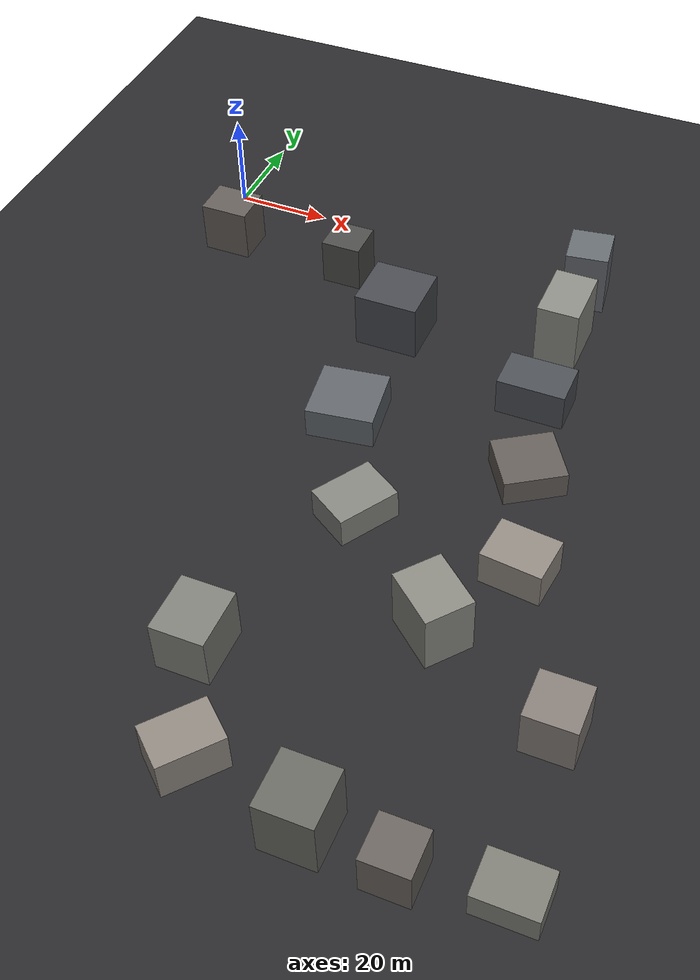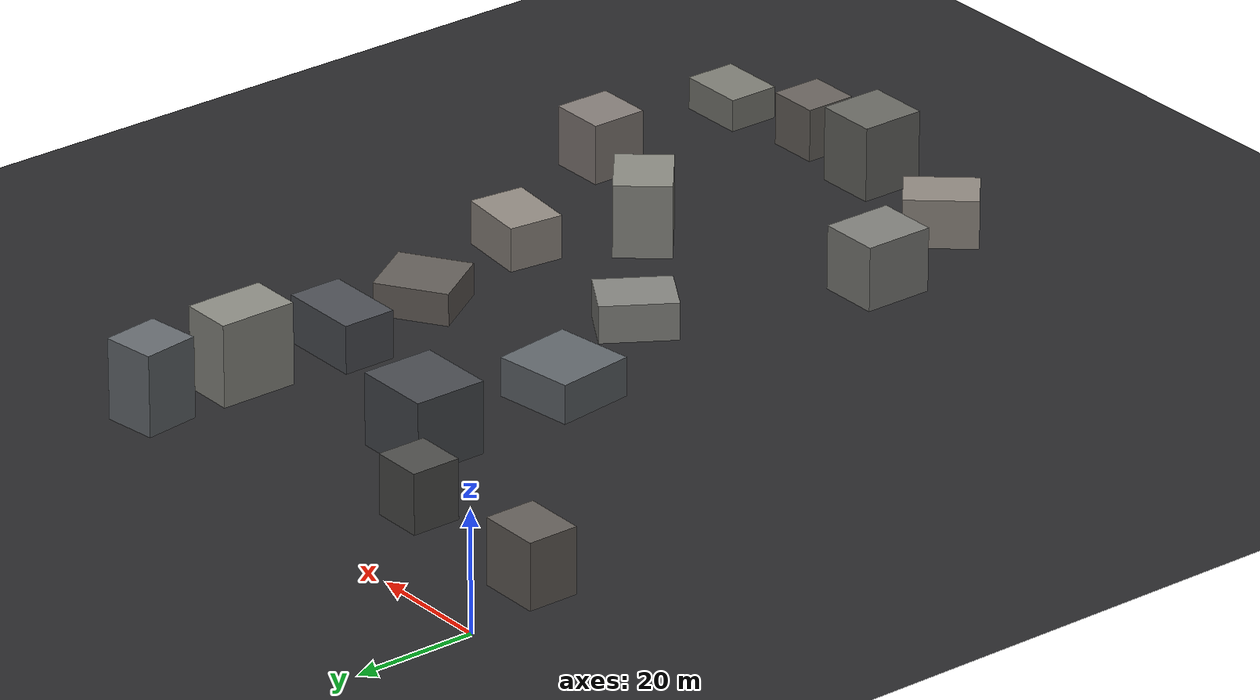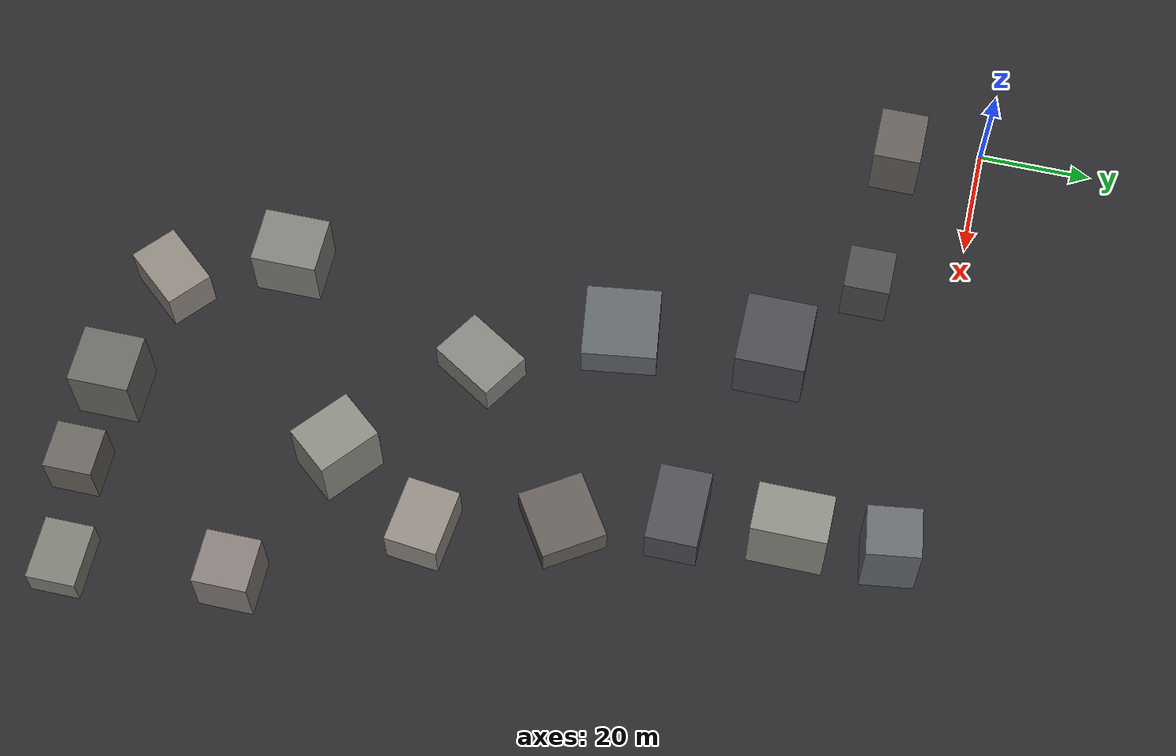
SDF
<sdf version="1.7">
 <world name="urban_tight">
  <model name="ground">
   <static>true</static>
   <pose>59.5 -62.5 0 0 0 0</pose>
   <link name="l">
    <collision name="c"><geometry><plane><normal>0 0 1</normal><size>179 185</size></plane></geometry></collision>
    <visual name="v">
     <geometry><plane><normal>0 0 1</normal><size>179 185</size></plane></geometry>
     <material><ambient>0.16 0.16 0.17 1</ambient><diffuse>0.16 0.16 0.17 1</diffuse></material>
    </visual>
   </link>
  </model>
  <model name="bldg_01">
   <static>true</static>
   <pose>62.388 -79.235 3.128 0 0 -2.1298</pose>
   <link name="l">
    <collision name="c"><geometry><box><size>12.449 9.469 6.256</size></box></geometry></collision>
    <visual name="v">
     <geometry><box><size>12.449 9.469 6.256</size></box></geometry>
     <material><ambient>0.52 0.52 0.50 1</ambient><diffuse>0.52 0.52 0.50 1</diffuse></material>
    </visual>
   </link>
  </model>
  <model name="bldg_03">
   <static>true</static>
   <pose>85.122 -98.767 6.142 0 0 -2.2655</pose>
   <link name="l">
    <collision name="c"><geometry><box><size>9.323 11.536 12.285</size></box></geometry></collision>
    <visual name="v">
     <geometry><box><size>9.323 11.536 12.285</size></box></geometry>
     <material><ambient>0.54 0.54 0.51 1</ambient><diffuse>0.54 0.54 0.51 1</diffuse></material>
    </visual>
   </link>
  </model>
  <model name="bldg_04">
   <static>true</static>
   <pose>83.743 -39.702 4.015 0 0 -1.5708</pose>
   <link name="l">
    <collision name="c"><geometry><box><size>8.933 13.743 8.029</size></box></geometry></collision>
    <visual name="v">
     <geometry><box><size>8.933 13.743 8.029</size></box></geometry>
     <material><ambient>0.30 0.31 0.33 1</ambient><diffuse>0.30 0.31 0.33 1</diffuse></material>
    </visual>
   </link>
  </model>
  <model name="bldg_05">
   <static>true</static>
   <pose>88.520 -58.686 2.706 0 0 -0.9960</pose>
   <link name="l">
    <collision name="c"><geometry><box><size>11.464 12.227 5.412</size></box></geometry></collision>
    <visual name="v">
     <geometry><box><size>11.464 12.227 5.412</size></box></geometry>
     <material><ambient>0.39 0.37 0.35 1</ambient><diffuse>0.39 0.37 0.35 1</diffuse></material>
    </visual>
   </link>
  </model>
  <model name="bldg_06">
   <static>true</static>
   <pose>80.211 -140.423 6.253 0 0 0.0000</pose>
   <link name="l">
    <collision name="c"><geometry><box><size>10.281 10.720 12.507</size></box></geometry></collision>
    <visual name="v">
     <geometry><box><size>10.281 10.720 12.507</size></box></geometry>
     <material><ambient>0.41 0.41 0.39 1</ambient><diffuse>0.41 0.41 0.39 1</diffuse></material>
    </visual>
   </link>
  </model>
  <model name="bldg_07">
   <static>true</static>
   <pose>50.055 -29.622 5.992 0 0 -1.5708</pose>
   <link name="l">
    <collision name="c"><geometry><box><size>12.108 13.057 11.984</size></box></geometry></collision>
    <visual name="v">
     <geometry><box><size>12.108 13.057 11.984</size></box></geometry>
     <material><ambient>0.28 0.29 0.31 1</ambient><diffuse>0.28 0.29 0.31 1</diffuse></material>
    </visual>
   </link>
  </model>
  <model name="bldg_08">
   <static>true</static>
   <pose>113.375 -139.123 2.712 0 0 0.0000</pose>
   <link name="l">
    <collision name="c"><geometry><box><size>11.057 8.545 5.424</size></box></geometry></collision>
    <visual name="v">
     <geometry><box><size>11.057 8.545 5.424</size></box></geometry>
     <material><ambient>0.49 0.49 0.46 1</ambient><diffuse>0.49 0.49 0.46 1</diffuse></material>
    </visual>
   </link>
  </model>
  <model name="bldg_09">
   <static>true</static>
   <pose>110.572 -110.374 5.053 0 0 0.0000</pose>
   <link name="l">
    <collision name="c"><geometry><box><size>9.437 9.445 10.106</size></box></geometry></collision>
    <visual name="v">
     <geometry><box><size>9.437 9.445 10.106</size></box></geometry>
     <material><ambient>0.52 0.49 0.47 1</ambient><diffuse>0.52 0.49 0.47 1</diffuse></material>
    </visual>
   </link>
  </model>
  <model name="bldg_10">
   <static>true</static>
   <pose>33.259 -15.917 4.993 0 0 0.0000</pose>
   <link name="l">
    <collision name="c"><geometry><box><size>8.384 8.126 9.985</size></box></geometry></collision>
    <visual name="v">
     <geometry><box><size>8.384 8.126 9.985</size></box></geometry>
     <material><ambient>0.30 0.30 0.29 1</ambient><diffuse>0.30 0.30 0.29 1</diffuse></material>
    </visual>
   </link>
  </model>
  <model name="bldg_11">
   <static>true</static>
   <pose>82.962 -3.831 6.710 0 0 -1.4336</pose>
   <link name="l">
    <collision name="c"><geometry><box><size>9.285 8.794 13.420</size></box></geometry></collision>
    <visual name="v">
     <geometry><box><size>9.285 8.794 13.420</size></box></geometry>
     <material><ambient>0.40 0.42 0.44 1</ambient><diffuse>0.40 0.42 0.44 1</diffuse></material>
    </visual>
   </link>
  </model>
  <model name="bldg_12">
   <static>true</static>
   <pose>58.311 -136.232 4.094 0 0 -0.7082</pose>
   <link name="l">
    <collision name="c"><geometry><box><size>8.566 11.954 8.189</size></box></geometry></collision>
    <visual name="v">
     <geometry><box><size>8.566 11.954 8.189</size></box></geometry>
     <material><ambient>0.56 0.53 0.50 1</ambient><diffuse>0.56 0.53 0.50 1</diffuse></material>
    </visual>
   </link>
  </model>
  <model name="bldg_14">
   <static>true</static>
   <pose>51.094 -56.588 3.241 0 0 -1.4363</pose>
   <link name="l">
    <collision name="c"><geometry><box><size>13.188 13.415 6.482</size></box></geometry></collision>
    <visual name="v">
     <geometry><box><size>13.188 13.415 6.482</size></box></geometry>
     <material><ambient>0.38 0.40 0.42 1</ambient><diffuse>0.38 0.40 0.42 1</diffuse></material>
    </visual>
   </link>
  </model>
  <model name="bldg_15">
   <static>true</static>
   <pose>94.685 -81.341 3.688 0 0 -1.6809</pose>
   <link name="l">
    <collision name="c"><geometry><box><size>9.222 11.805 7.376</size></box></geometry></collision>
    <visual name="v">
     <geometry><box><size>9.222 11.805 7.376</size></box></geometry>
     <material><ambient>0.57 0.54 0.51 1</ambient><diffuse>0.57 0.54 0.51 1</diffuse></material>
    </visual>
   </link>
  </model>
  <model name="bldg_16">
   <static>true</static>
   <pose>5.395 -15.031 5.489 0 0 0.0000</pose>
   <link name="l">
    <collision name="c"><geometry><box><size>10.185 8.420 10.978</size></box></geometry></collision>
    <visual name="v">
     <geometry><box><size>10.185 8.420 10.978</size></box></geometry>
     <material><ambient>0.39 0.37 0.35 1</ambient><diffuse>0.39 0.37 0.35 1</diffuse></material>
    </visual>
   </link>
  </model>
  <model name="bldg_18">
   <static>true</static>
   <pose>83.359 -20.695 6.824 0 0 -1.5708</pose>
   <link name="l">
    <collision name="c"><geometry><box><size>12.934 8.633 13.647</size></box></geometry></collision>
    <visual name="v">
     <geometry><box><size>12.934 8.633 13.647</size></box></geometry>
     <material><ambient>0.55 0.55 0.52 1</ambient><diffuse>0.55 0.55 0.52 1</diffuse></material>
    </visual>
   </link>
  </model>
  <model name="bldg_19">
   <static>true</static>
   <pose>49.959 -116.534 5.365 0 0 -1.5708</pose>
   <link name="l">
    <collision name="c"><geometry><box><size>11.642 10.114 10.730</size></box></geometry></collision>
    <visual name="v">
     <geometry><box><size>11.642 10.114 10.730</size></box></geometry>
     <material><ambient>0.50 0.50 0.48 1</ambient><diffuse>0.50 0.50 0.48 1</diffuse></material>
    </visual>
   </link>
  </model>
  <model name="bldg_20">
   <static>true</static>
   <pose>96.014 -141.646 4.443 0 0 0.0000</pose>
   <link name="l">
    <collision name="c"><geometry><box><size>8.547 8.512 8.887</size></box></geometry></collision>
    <visual name="v">
     <geometry><box><size>8.547 8.512 8.887</size></box></geometry>
     <material><ambient>0.41 0.39 0.37 1</ambient><diffuse>0.41 0.39 0.37 1</diffuse></material>
    </visual>
   </link>
  </model>
 </world>
</sdf>
